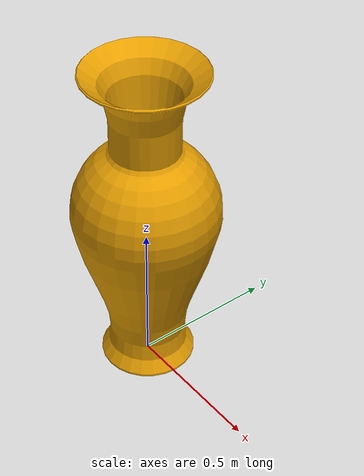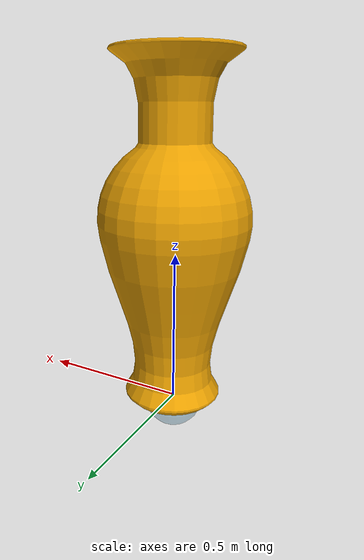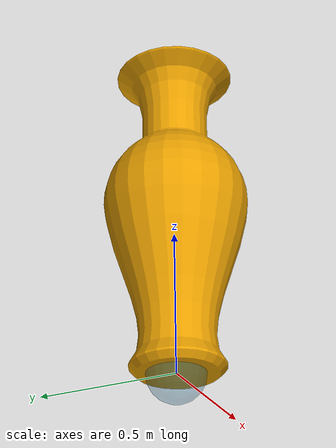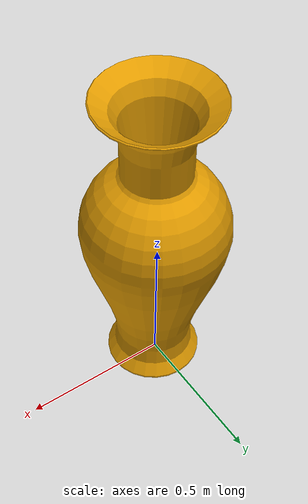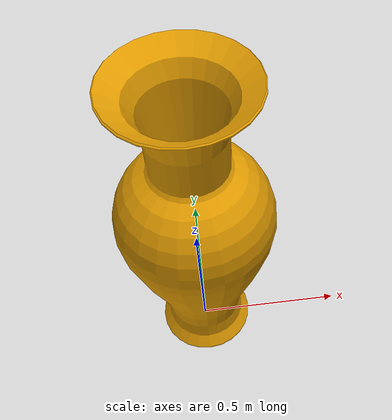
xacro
<?xml version="1.0"?>

<robot name="vase">

    <material name="OA">
        <color rgba="0.101960784 0.42745098 0.588235294 0.333"/>
    </material>

    <gazebo reference="link_base">
        <turnGravityOff>false</turnGravityOff>
    </gazebo>
    <gazebo>
        <plugin name="gazebo_ros_template" filename="libgazebo_ros_template.so"/>
    </gazebo>

    <link name="link_base">
        <visual>
            <origin xyz="0.0 0.0 0.0"/>
            <geometry>
                <sphere radius="0.1"/>
            </geometry>
            <material name="OA"/>
        </visual>
        <visual>
            <origin xyz="0.0 0.0 0.0"/>
            <geometry>
            <mesh filename="package://wai_oa_gazebo/resources/reps/vase/vase.dae"/>
            </geometry>
        </visual>
        <inertial>
            <origin xyz="0.0 0.0 0.6"/>
            <mass value="1.0"/>
            <inertia  ixx="1.0" ixy="0.0"  ixz="0.0"  iyy="1.0"  iyz="0.0"  izz="1.0"/>
        </inertial>
        <collision>
            <origin xyz="0.0 0.0 0.6"/>
            <geometry>
                <cylinder length="1.2" radius="0.15"/>
            </geometry>
        </collision>
    </link>

</robot>
